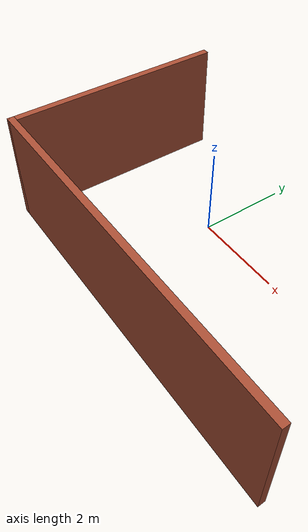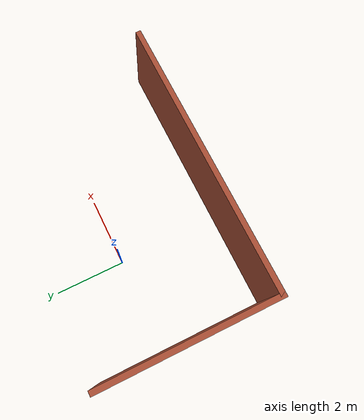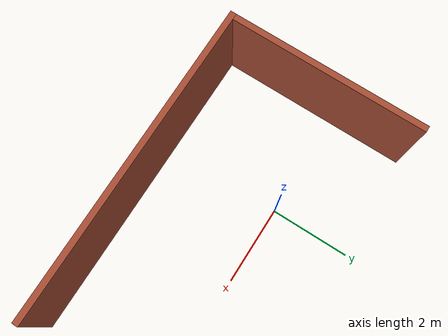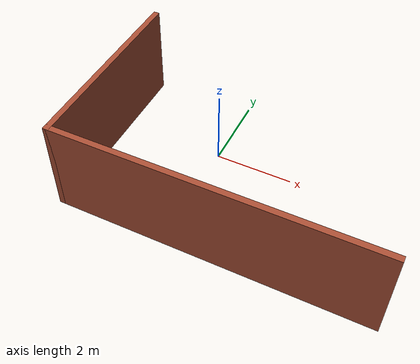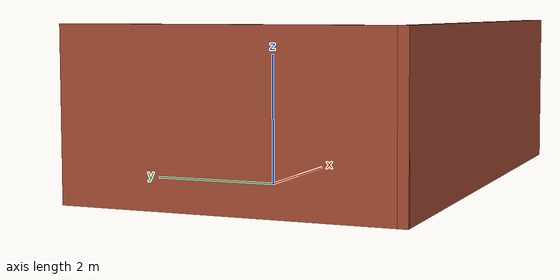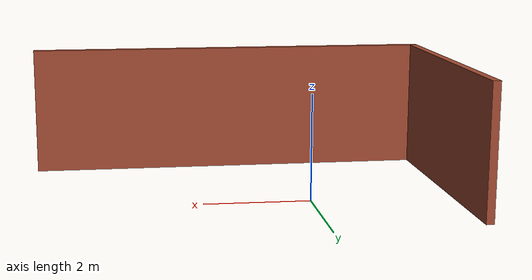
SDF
<?xml version='1.0'?>
<sdf version='1.7'>
  <model name='empty_world2'>
    <pose>1.16152 -0.597875 0 0 -0 0</pose>
    <link name='Wall_2'>
      <collision name='Wall_2_Collision'>
        <geometry>
          <box>
            <size>8 0.15 2.5</size>
          </box>
        </geometry>
        <pose>0 0 1.25 0 -0 0</pose>
      </collision>
      <visual name='Wall_2_Visual'>
        <pose>0 0 1.25 0 -0 0</pose>
        <geometry>
          <box>
            <size>8 0.15 2.5</size>
          </box>
        </geometry>
        <material>
          <script>
            <uri>file://media/materials/scripts/gazebo.material</uri>
            <name>Gazebo/Bricks</name>
          </script>
          <ambient>1 1 1 1</ambient>
        </material>
        <meta>
          <layer>0</layer>
        </meta>
      </visual>
      <pose>0 -2.425 0 0 -0 0</pose>
    </link>
    <link name='Wall_4'>
      <collision name='Wall_4_Collision'>
        <geometry>
          <box>
            <size>5 0.15 2.5</size>
          </box>
        </geometry>
        <pose>0 0 1.25 0 -0 0</pose>
      </collision>
      <visual name='Wall_4_Visual'>
        <pose>0 0 1.25 0 -0 0</pose>
        <geometry>
          <box>
            <size>5 0.15 2.5</size>
          </box>
        </geometry>
        <material>
          <script>
            <uri>file://media/materials/scripts/gazebo.material</uri>
            <name>Gazebo/Bricks</name>
          </script>
          <ambient>1 1 1 1</ambient>
        </material>
        <meta>
          <layer>0</layer>
        </meta>
      </visual>
      <pose>-3.925 -0 0 0 -0 1.5708</pose>
    </link>
    <static>1</static>
  </model>
</sdf>
